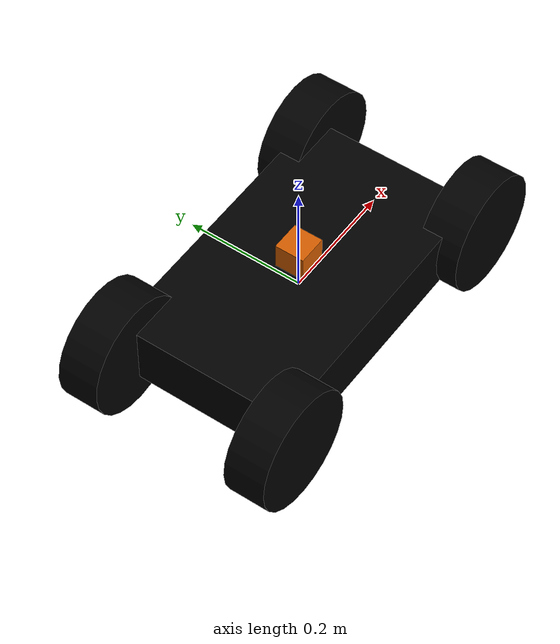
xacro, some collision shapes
<?xml version="1.0"?>

<robot name="robot"
	xmlns:xacro="http://www.ros.org/wiki/xacro">
	<xacro:arg name="robot_name" default="robot"/>

	<xacro:include filename="$(find robot_description)/urdf/base/robot_base.xacro" />
    <xacro:include filename="$(find robot_description)/urdf/base/gazebo_essentials.xacro" />
    <xacro:include filename="$(find robot_description)/urdf/control/diff_ros2_control.xacro" />
	<xacro:include filename="$(find robot_description)/urdf/sensors/lidar.xacro" />
    <xacro:include filename="$(find robot_description)/urdf/wheels/wheel.xacro" />

	<xacro:property name="wheel_offset_x" value="0.25" />
	<xacro:property name="wheel_offset_y" value="0.15" />
	<xacro:property name="wheel_offset_z" value="0.0" />
	<xacro:property name="PI" value="3.1415926535897931" />

	<xacro:robot_base robot_name="$(arg robot_name)"/>
    <xacro:gazebo_essentials robot_name="$(arg robot_name)"/>

	<xacro:robot_wheel prefix="$(arg robot_name)_front_left" parent="$(arg robot_name)_base_link" origin="${wheel_offset_x} ${wheel_offset_y} ${wheel_offset_z}"/>
	<xacro:robot_wheel prefix="$(arg robot_name)_front_right" parent="$(arg robot_name)_base_link" origin="${wheel_offset_x} -${wheel_offset_y} ${wheel_offset_z}"/>
	<xacro:robot_wheel prefix="$(arg robot_name)_back_right" parent="$(arg robot_name)_base_link" origin="-${wheel_offset_x} -${wheel_offset_y} ${wheel_offset_z}"/>
	<xacro:robot_wheel prefix="$(arg robot_name)_back_left" parent="$(arg robot_name)_base_link" origin="-${wheel_offset_x} ${wheel_offset_y} ${wheel_offset_z}"/>

	<xacro:diff_drive robot_name="$(arg robot_name)"/>

	<xacro:lidar robot_name="$(arg robot_name)"/>

</robot>

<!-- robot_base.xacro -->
<robot xmlns:xacro="http://ros.org/wiki/xacro" name="robot_description">

<xacro:macro name="robot_base" params="robot_name">

    <xacro:property name="black" value="0.0 0.0 0.0 1"/>

      <link name="${robot_name}_base_link">
        <collision>
          <origin xyz="0 0 0.0" rpy="0 0 0" />
          <geometry>
            <box size="0.50 0.30 0.10" />
          </geometry>
        </collision>
        <inertial>
          <mass value="5.0" />
          <origin xyz="0 0 0" />
          <inertia ixx="1.391" ixy="0.004" ixz="0.0" iyy="6.853" iyz="0.0" izz="6.125" />
        </inertial>
        <visual>
          <origin xyz="0 0 0" rpy="0 0 0" />
          <geometry>
            <box size="0.50 0.30 0.10" />
          </geometry>
          <material name="wheel_material">
            <color rgba="0.0 0.0 0.0 1.0"/>
        </material>
        </visual>
      </link>

    <gazebo reference="${robot_name}_base_link">
      <material>Gazebo/Black</material>
    </gazebo>

</xacro:macro>

</robot>

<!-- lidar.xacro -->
<robot xmlns:xacro="http://ros.org/wiki/xacro" name="lidar" >

<xacro:macro name="lidar" params="robot_name">

<link name="${robot_name}_lidar_link">
	<collision>
		<origin xyz="0 0 0" rpy="0 0 0"/>
		<geometry>
			<box size="0.05 0.05 0.05"/>
		</geometry>
	</collision>

	<inertial>
		<mass value="1e-5" />
		<origin xyz="0 0 0" rpy="0 0 0"/>
		<inertia ixx="1e-6" ixy="0" ixz="0" iyy="1e-6" iyz="0" izz="1e-6" />
	</inertial>

	<visual>
		<origin xyz="0 0 0" rpy="0 0 0"/>
		<geometry>
			<mesh filename="package://robot_description/meshes/hokuyo.dae"/>
		</geometry>
	</visual>
</link>

<joint name="${robot_name}_lidar_joint" type="fixed">
	<axis xyz="0 1 0" />
		<origin xyz="0.0 0 0.07" rpy="0 0 0"/>
		<parent link="${robot_name}_base_link"/>
		<child link="${robot_name}_lidar_link"/>
</joint>

</xacro:macro>

</robot>

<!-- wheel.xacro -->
<robot xmlns:xacro="http://ros.org/wiki/xacro" name="robot_wheel">
<xacro:property name="wheel_color" value="0.0 0.0 0.0 1"/>

<xacro:macro name="robot_wheel" params="prefix parent origin">
<link name="${prefix}_wheel">
  <collision>
    <origin xyz="0 0 0" rpy="1.5707963267949 0 0" />
    <geometry>
      <cylinder radius="0.10" length="0.07" />
    </geometry>
  </collision>

  <inertial>
    <origin xyz="-4.1867E-18 0.0068085 -1.65658661799998E-18" rpy="0 0 0" />
    <mass value="0.378" />
    <inertia ixx="0.00856502765719703" ixy="1.5074118157338E-19" ixz="-4.78150098725052E-19"
        iyy="0.013670640432096" iyz="-2.68136447099727E-19" izz="0.00856502765719703" />
  </inertial>

  <visual>
    <origin xyz="0 0 0" rpy="1.5707963267949 0 0" />
    <geometry>
      <cylinder radius="0.10" length="0.07" />
      <!--mesh filename="package://robot_description/meshes/wheel.dae"/-->
    </geometry>
    <material name="wheel_material">
        <color rgba="${wheel_color}"/>
    </material>
  </visual>

</link>

<gazebo reference="${prefix}_wheel">
  <material>Gazebo/Black</material>
</gazebo>

<joint name="${prefix}_wheel_joint" type="continuous">
    <axis xyz="0 1 0"/>
    <parent link ="${parent}"/>
    <child link ="${prefix}_wheel"/>
    <origin rpy ="0 0 0" xyz= "${origin}"/>
  </joint>

<transmission name="${prefix}_wheel_trans" type="SimpleTransmission">
    <type>transmission_interface/SimpleTransmission</type>
    <joint name="${prefix}_wheel_joint">
   	  <hardwareInterface>hardware_interface/VelocityJointInterface</hardwareInterface>
    </joint>
</transmission>

<gazebo reference="${prefix}_wheel" xmlns:ignition="http://ignitionrobotics.org/schema">
    <collision>
      <surface>
        <friction>
          <ode>
            <mu>1.0</mu>
            <mu2>0.03</mu2>
            <fdir1 ignition:expressed_in="base_link">1 0 0</fdir1>
          </ode>
        </friction>
      </surface>
    </collision>
  </gazebo>

</xacro:macro>

</robot>
